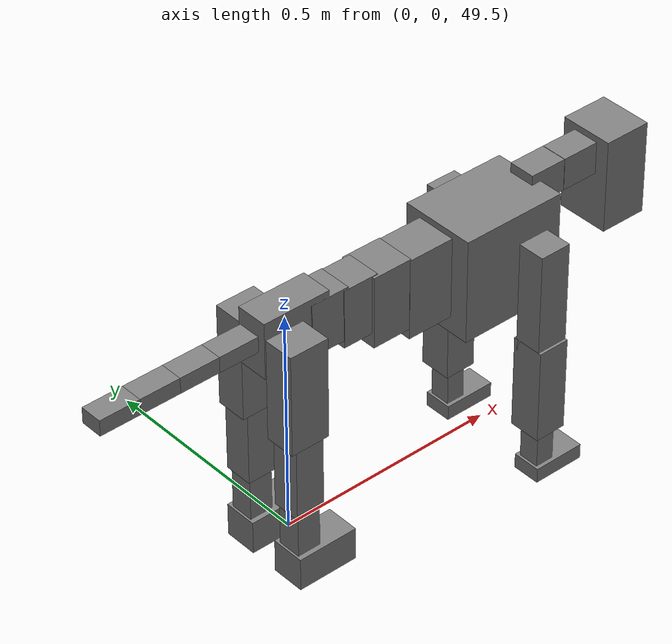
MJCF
<mujoco model="dog">

    <default>
        <joint armature="0.02" stiffness="1" damping="0.2" limited="true"/>
        <geom condim="3" friction="1 0.05 0.05" margin="0.01"/>
        <motor ctrllimited="true" ctrlrange="-1.0 1.0" forcelimited="true" gear="50"/>
    </default>

    <compiler inertiafromgeom="true" angle="radian"/>

    <option timestep="0.016" iterations="50" tolerance="1e-10" solver="Newton" jacobian="dense" cone="pyramidal"/>

    <size nconmax="20000" njmax="60000" nstack="5000000"/>
    <visual>
        <map force="0.1" zfar="30"/>
        <rgba haze="0.15 0.25 0.35 1"/>
        <quality shadowsize="2048"/>
        <global offwidth="800" offheight="800"/>
    </visual>

    <asset>
        <texture type="skybox" builtin="gradient" rgb1="0.3 0.5 0.7" rgb2="0 0 0" width="512" height="512"/>
        <texture name="texplane" type="2d" builtin="checker" rgb1=".2 .3 .4" rgb2=".1 0.15 0.2" width="512" height="512"
                 mark="cross" markrgb=".8 .8 .8"/>
        <texture name="texgeom" type="cube" builtin="flat" mark="cross" width="127" height="1278" rgb1="0.8 0.6 0.4"
                 rgb2="0.8 0.6 0.4" markrgb="1 1 1" random="0.01"/>

        <material name="matplane" reflectance="0.3" texture="texplane" texrepeat="1 1" texuniform="true"/>
        <material name="matgeom" texture="texgeom" texuniform="true" rgba="0.8 0.6 .4 1"/>
    </asset>

    <worldbody>
        <geom name="floor" pos="0 0 0" size="0 0 .25" type="plane" material="matplane" condim="3"/>

        <light directional="false" diffuse=".2 .2 .2" specular="0 0 0" pos="0 0 5" dir="0 0 -1" castshadow="false"/>
        <light mode="targetbodycom" target="torso" directional="false" diffuse=".8 .8 .8" specular="0.3 0.3 0.3"
               pos="0 0 4.0" dir="0 0 -1"/>

        <body name="root" pos="0 0 50">
            <freejoint name="root_1"/>
            <geom type="box" pos="0 0 -0.02" size="0.0774  0.0358  0.063" density="2030"/>

            <body name="spine1" pos="0.054 0 0">
                <joint name="spine1_y" axis="0 1 0" range="0 0.7" limited="true"/>
                <geom type="box" pos="0.02375 0 -0.03" size="0.04375  0.0375  0.05985" density="2030"/>

                <body name="spine2" pos="0.0612 0 0">
                    <joint name="spine2_y" axis="0 1 0" range="-0.15 0.15" limited="true"/>
                    <geom type="box" pos="0.03555  0  -0.04" size="0.04055  0.039  0.06615" density="2030"/>

                    <body name="spine3" pos="0.0730 0 0">
                        <joint name="spine3_y" axis="0 1 0" range="-0.15 0.15" limited="true"/>
                        <geom type="box" pos="0.03555  0  -0.057" size="0.04555  0.0445  0.081" density="2030"/>

                        <body name="spine4" pos="0.0780 0 0">
                            <joint name="spine4_y" axis="0 1 0" range="-0.15 0.15" limited="true"/>
                            <geom type="box" pos="0.05265  0  -0.07" size="0.05265  0.045  0.09135" density="2030"/>

                            <body name="torso" pos="0.1082 0 0">
                                <joint name="torso_y" axis="0 1 0" range="-0.15 0.15" limited="true"/>
                                <geom type="box" pos="0.11925  0  -0.085" size="0.11925  0.085  0.11745"
                                      density="2030"/>

                                <body name="neck1" pos="0.2160  0   0.0180">
                                    <joint name="neck1_y" axis="0 1 0" range="-1.2  -1" limited="true"/>
                                    <geom type="box" pos="0.0423  0  0" size="0.0423  0.03  0.036" density="2325"/>

                                    <body name="neck2" pos="0.0853  0  0">
                                        <joint name="neck2_y" axis="0 1 0" range="0.1  0" limited="true"/>
                                        <geom type="box" pos="0.0423  0  0" size="0.0423  0.03  0.036" density="2325"/>

                                        <body name="head" pos="0.0853  0  0">
                                            <joint name="head_y" axis="0 1 0" range="-0.3  -0.2" limited="true"/>
                                            <geom type="box" pos="0.0531  0  -0.055" size="0.0531  0.06  0.1044"
                                                  density="4030"/>

                                        </body>
                                    </body>
                                </body>

                                <body name="front_shoulder" pos="0.156  0   -0.0480">
                                    <joint name="front_shoulder_y" axis="0 1 0" range="-1 1.5" limited="true"/>
                                    <geom type="box" pos="0 0.13 -0.0992" size="0.0356  0.0305  0.1258" density="1158"/>
                                    <geom type="box" pos="0 -0.13 -0.0992" size="0.0356  0.0305  0.1258"
                                          density="1158"/>

                                    <body name="front_elbow" pos="0  0  -0.1984">
                                        <joint name="front_elbow_y" axis="0 1 0" range="-2 0" limited="true"/>
                                        <geom type="box" pos="0 0.13 -0.1066" size="0.0356  0.0364  0.1066"
                                              density="1081"/>
                                        <geom type="box" pos="0 -0.13 -0.1066" size="0.0356  0.0364  0.1066"
                                              density="1081"/>

                                        <body name="front_wrist" pos="0  0  -0.2132">
                                            <joint name="front_wrist_y" axis="0 1 0" range="-0.2 0" limited="true"/>
                                            <geom type="box" pos="0 0.13 -0.0478" size="0.0211  0.0235  0.0610"
                                                  density="1664"/>
                                            <geom type="box" pos="0 -0.13 -0.0478" size="0.0211  0.0235  0.0610"
                                                  density="1664"/>

                                            <body name="front_finger_end" pos="0  0  -0.0957">
                                                <joint name="front_finger_y" axis="0 1 0" range="-0.4 1"
                                                       limited="true"/>
                                                <geom type="box" pos="0.0320  0.13  -0.0018"
                                                      size="0.0587  0.0320  0.0168" density="1515"/>
                                                <geom type="box" pos="0.0320  -0.13  -0.0018"
                                                      size="0.0587  0.0320  0.0168" density="1515"/>

                                            </body>

                                        </body>
                                    </body>
                                </body>

                            </body>
                        </body>
                    </body>
                </body>
            </body>

            <body name="back_hip" pos="-0.03 0 -0.018">
                <joint name="back_hip_y" axis="0 1 0" range="-1.5 0.3" limited="true"/>
                <geom type="box" pos="0 0.07 -0.0912" size="0.0443  0.0347  0.1140" density="1154"/>
                <geom type="box" pos="0 -0.07 -0.0912" size="0.0443  0.0347  0.1140" density="1154"/>

                <body name="back_knee" pos="0  0  -0.1825">
                    <joint name="back_knee_y" axis="0 1 0" range="0 2.8" limited="true"/>
                    <geom type="box" pos="0 0.07 -0.0850" size="0.0326  0.0322  0.1006" density="1227"/>
                    <geom type="box" pos="0 -0.07 -0.0850" size="0.0326  0.0322  0.1006" density="1227"/>

                    <body name="back_ankle" pos="0  0  -0.1700">
                        <joint name="back_ankle_y" axis="0 1 0" range="-2.2 0" limited="true"/>
                        <geom type="box" pos="0 0.07 -0.0637" size="0.0266  0.0266  0.0750" density="1284"/>
                        <geom type="box" pos="0 -0.07 -0.0637" size="0.0266  0.0266  0.0750" density="1284"/>

                        <body name="back_toe_end" pos="0  0  -0.1274">
                            <joint name="back_toe_y" axis="0 1 0" range="-0.4 1" limited="true"/>
                            <geom type="box" pos="0.0376  0.07  -0.0224" size="0.0689  0.0376  0.0374" density="1515"/>
                            <geom type="box" pos="0.0376  -0.07  -0.0224" size="0.0689  0.0376  0.0374" density="1515"/>

                        </body>
                    </body>
                </body>
            </body>

            <body name="tail1" pos="-0.074 0 -0.006">
                <joint name="tail1_y" axis="0 1 0" range="-0.2 0.2" limited="true"/>
                <geom type="box" pos="-0.0536  0  0" size="0.045  0.025  0.0175" density="1587"/>

                <body name="tail2" pos="-0.09 0 0">
                    <joint name="tail2_y" axis="0 1 0" range="-0.2 0.2" limited="true"/>
                    <geom type="box" pos="-0.0536  0  0" size="0.045  0.025  0.0175" density="1587"/>

                    <body name="tail3" pos="-0.09 0 0">
                        <joint name="tail3_y" axis="0 1 0" range="-0.2 0.2" limited="true"/>
                        <geom type="box" pos="-0.0536  0  0" size="0.045  0.025  0.0175" density="1587"/>

                        <body name="tail4" pos="-0.09 0 0">
                            <joint name="tail4_y" axis="0 1 0" range="-0.2 0.2" limited="true"/>
                            <geom type="box" pos="-0.0536  0  0" size="0.045  0.025  0.0175" density="1587"/>

                        </body>
                    </body>
                </body>
            </body>
        </body>
    </worldbody>

    <actuator>
        <motor joint="spine1_y" forcerange="-150 150     "/>
        <motor joint="spine2_y" forcerange="-150 150     "/>
        <motor joint="spine3_y" forcerange="-150 150     "/>
        <motor joint="spine4_y" forcerange="-150 150     "/>
        <motor joint="torso_y" forcerange="-150 150     "/>
        <motor joint="neck1_y" forcerange="-100 100       "/>
        <motor joint="neck2_y" forcerange="-100 100       "/>
        <motor joint="head_y" forcerange="-150 150       "/>
        <motor joint="front_shoulder_y" forcerange="-109.96 193.08"/>
        <motor joint="front_elbow_y" forcerange="-168.81 196.05"/>
        <motor joint="front_wrist_y" forcerange="-63.35 124.37"/>
        <motor joint="front_finger_y" forcerange="-57.14 73.68"/>
        <motor joint="back_hip_y" forcerange="-373.30 289.65"/>
        <motor joint="back_knee_y" forcerange="-279.86 388.23"/>
        <motor joint="back_angle_y" forcerange="-211.30 113.62"/>
        <motor joint="back_toe_y" forcerange="-114.89 105.55"/>
        <motor joint="tail1_y" forcerange="-50 50     "/>
        <motor joint="tail2_y" forcerange="-50 50     "/>
        <motor joint="tail3_y" forcerange="-50 50     "/>
        <motor joint="tail4_y" forcerange="-50 50     "/>
    </actuator>
</mujoco>
